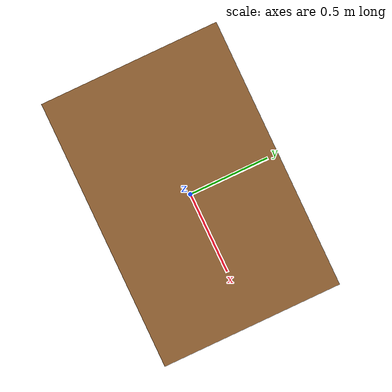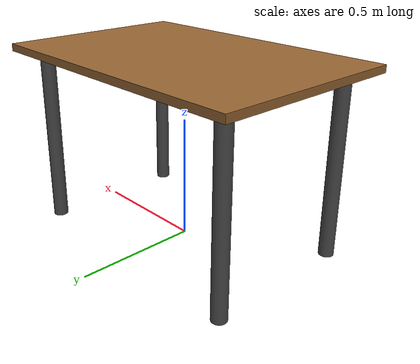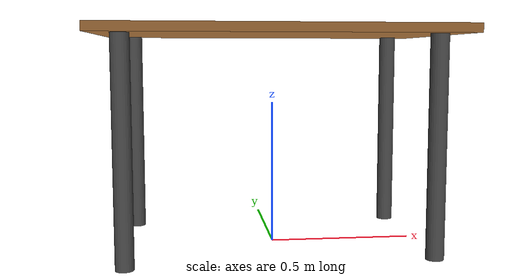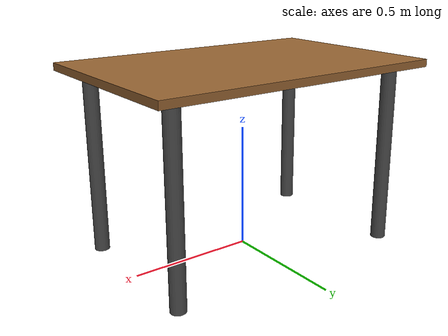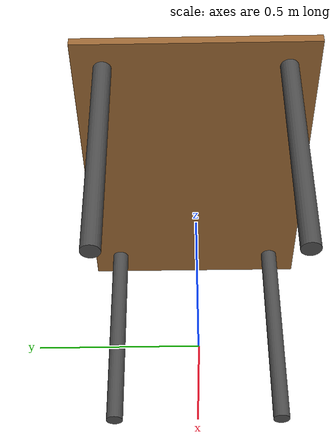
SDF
<?xml version="1.0"?>
<sdf version="1.6">
  <model name="table">
    <static>true</static>
    <link name="table_link">
      <!-- Table top -->
      <visual name="tabletop_visual">
        <pose>0 0 0.75 0 0 0</pose>
        <geometry>
          <box><size>1.2 0.8 0.03</size></box>
        </geometry>
        <material>
          <ambient>0.6 0.4 0.2 1</ambient>
          <diffuse>0.6 0.4 0.2 1</diffuse>
        </material>
      </visual>
      <collision name="tabletop_collision">
        <pose>0 0 0.75 0 0 0</pose>
        <geometry>
          <box><size>1.2 0.8 0.03</size></box>
        </geometry>
      </collision>

      <!-- Legs -->
      <visual name="leg1"><pose>0.5 0.3 0.375 0 0 0</pose>
        <geometry><cylinder><radius>0.03</radius><length>0.75</length></cylinder></geometry>
        <material><ambient>0.3 0.3 0.3 1</ambient></material>
      </visual>
      <collision name="leg1_col"><pose>0.5 0.3 0.375 0 0 0</pose>
        <geometry><cylinder><radius>0.03</radius><length>0.75</length></cylinder></geometry>
      </collision>

      <visual name="leg2"><pose>0.5 -0.3 0.375 0 0 0</pose>
        <geometry><cylinder><radius>0.03</radius><length>0.75</length></cylinder></geometry>
        <material><ambient>0.3 0.3 0.3 1</ambient></material>
      </visual>
      <collision name="leg2_col"><pose>0.5 -0.3 0.375 0 0 0</pose>
        <geometry><cylinder><radius>0.03</radius><length>0.75</length></cylinder></geometry>
      </collision>

      <visual name="leg3"><pose>-0.5 0.3 0.375 0 0 0</pose>
        <geometry><cylinder><radius>0.03</radius><length>0.75</length></cylinder></geometry>
        <material><ambient>0.3 0.3 0.3 1</ambient></material>
      </visual>
      <collision name="leg3_col"><pose>-0.5 0.3 0.375 0 0 0</pose>
        <geometry><cylinder><radius>0.03</radius><length>0.75</length></cylinder></geometry>
      </collision>

      <visual name="leg4"><pose>-0.5 -0.3 0.375 0 0 0</pose>
        <geometry><cylinder><radius>0.03</radius><length>0.75</length></cylinder></geometry>
        <material><ambient>0.3 0.3 0.3 1</ambient></material>
      </visual>
      <collision name="leg4_col"><pose>-0.5 -0.3 0.375 0 0 0</pose>
        <geometry><cylinder><radius>0.03</radius><length>0.75</length></cylinder></geometry>
      </collision>
    </link>
  </model>
</sdf>
